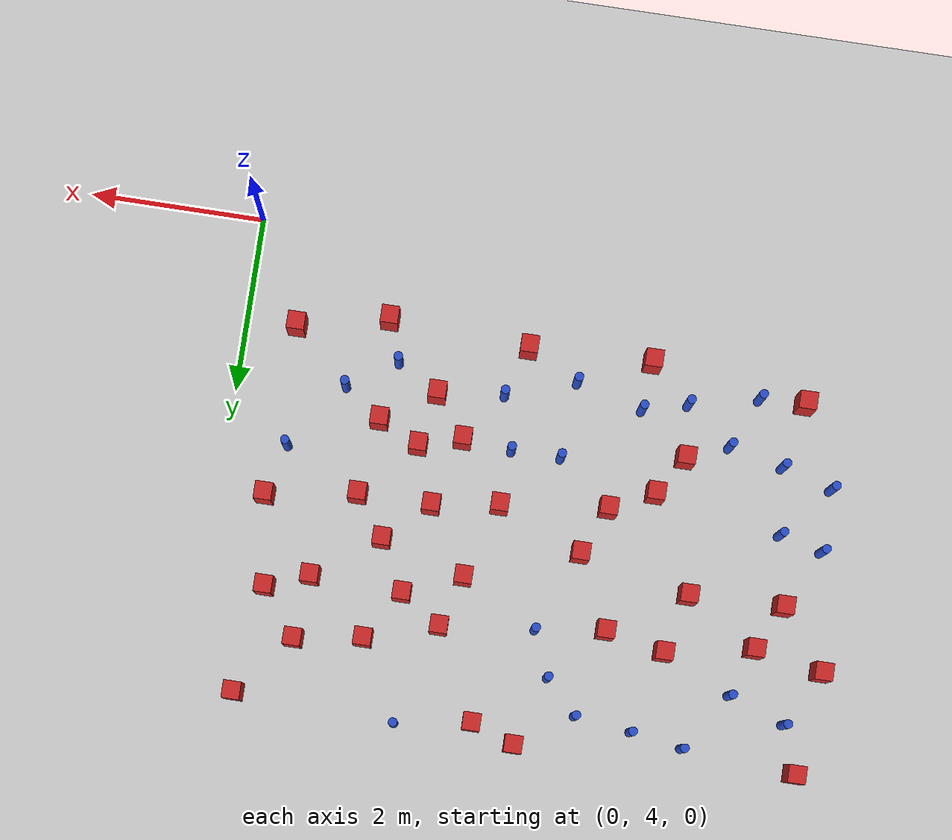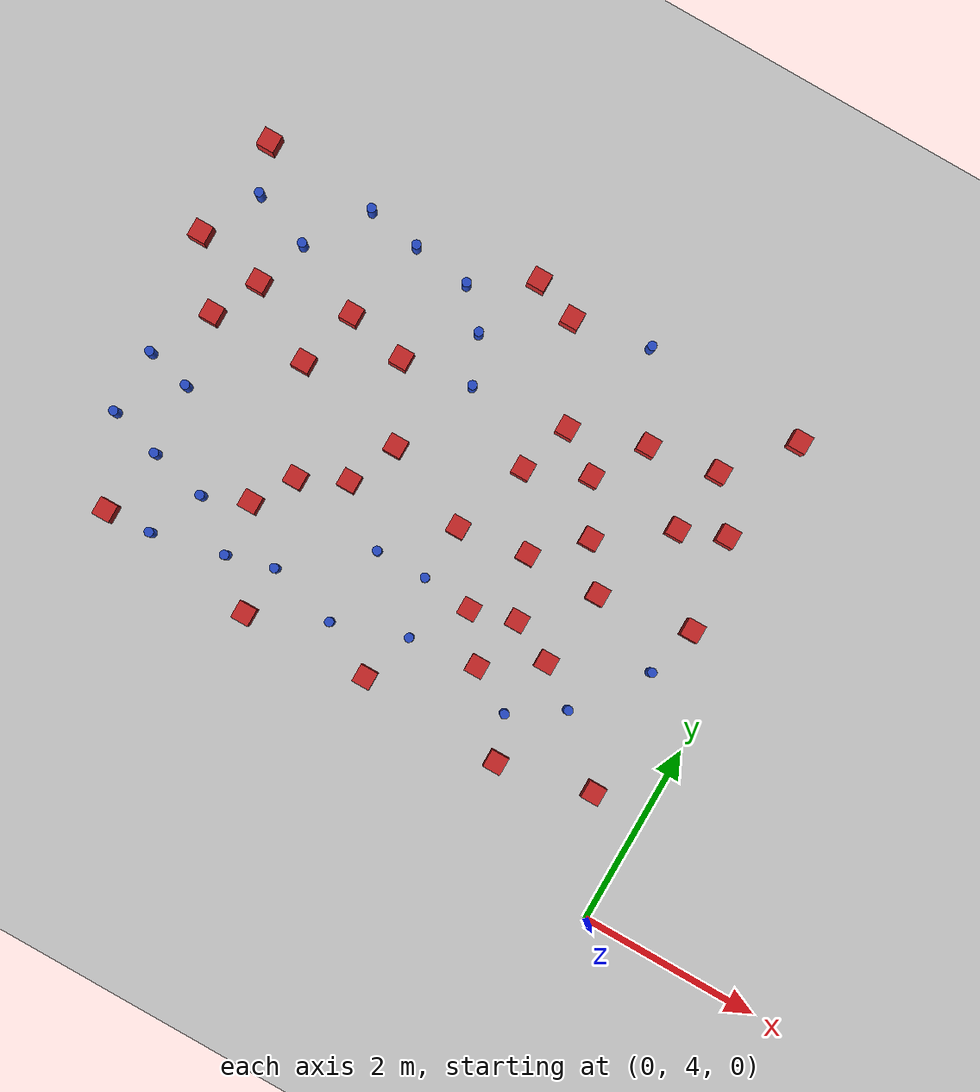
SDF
<sdf version="1.6">
 <world name="default">
  <model name="ground_plane">
   <static>1</static>
   <link name="link">
    <collision name="collision">
     <geometry><plane><normal>0 0 1</normal><size>100 100</size></plane></geometry>
     <surface><friction><ode><mu>100</mu><mu2>50</mu2></ode></friction></surface>
    </collision>
    <visual name="visual">
     <cast_shadows>0</cast_shadows>
     <geometry><plane><normal>0 0 1</normal><size>100 100</size></plane></geometry>
     <material>
      <ambient>1.0 1.0 1.0 1.0</ambient>
      <diffuse>0.8 0.8 0.8 1.0</diffuse>
      <specular>0.01 0.01 0.01 1.000000</specular>
     </material>
    </visual>
   </link>
  </model>
  <model name="square_post_obstacle2">
   <static>true</static>
   <pose>-6.45599153415 7.52745173422 1.91545236811e-07 -7.35059704564e-06 1.12565212e-07 2.39332434364e-05</pose>
   <link name="link">
    <pose>0 0 0.25 0 -0 0</pose>
    <inertial>
     <mass>100</mass>
     <inertia>
      <ixx>0.166667</ixx>
      <ixy>0</ixy>
      <ixz>0</ixz>
      <iyy>0.166667</iyy>
      <iyz>0</iyz>
      <izz>0.166667</izz>
     </inertia>
    </inertial>
    <collision name="collision"><geometry><box><size>.2 .2 .5</size></box></geometry></collision>
    <visual name="visual">
     <geometry><box><size>.2 .2 .5</size></box></geometry>
     <material>
      <script><name>Gazebo/Red</name><uri>file://media/materials/scripts/gazebo.material</uri></script>
     </material>
    </visual>
   </link>
  </model>
  <model name="square_post_obstacle9">
   <static>true</static>
   <pose>-4.86696928809 6.47936747951 1.91545236811e-07 -7.35059704564e-06 1.12565212e-07 2.39332434364e-05</pose>
   <link name="link">
    <pose>0 0 0.25 0 -0 0</pose>
    <inertial>
     <mass>100</mass>
     <inertia>
      <ixx>0.166667</ixx>
      <ixy>0</ixy>
      <ixz>0</ixz>
      <iyy>0.166667</iyy>
      <iyz>0</iyz>
      <izz>0.166667</izz>
     </inertia>
    </inertial>
    <collision name="collision"><geometry><box><size>.2 .2 .5</size></box></geometry></collision>
    <visual name="visual">
     <geometry><box><size>.2 .2 .5</size></box></geometry>
     <material>
      <script><name>Gazebo/Red</name><uri>file://media/materials/scripts/gazebo.material</uri></script>
     </material>
    </visual>
   </link>
  </model>
  <model name="square_post_obstacle11">
   <static>true</static>
   <pose>-0.696263297723 8.16231639691 1.91545236811e-07 -7.35059704564e-06 1.12565212e-07 2.39332434364e-05</pose>
   <link name="link">
    <pose>0 0 0.25 0 -0 0</pose>
    <inertial>
     <mass>100</mass>
     <inertia>
      <ixx>0.166667</ixx>
      <ixy>0</ixy>
      <ixz>0</ixz>
      <iyy>0.166667</iyy>
      <iyz>0</iyz>
      <izz>0.166667</izz>
     </inertia>
    </inertial>
    <collision name="collision"><geometry><box><size>.2 .2 .5</size></box></geometry></collision>
    <visual name="visual">
     <geometry><box><size>.2 .2 .5</size></box></geometry>
     <material>
      <script><name>Gazebo/Red</name><uri>file://media/materials/scripts/gazebo.material</uri></script>
     </material>
    </visual>
   </link>
  </model>
  <model name="square_post_obstacle16">
   <static>true</static>
   <pose>-0.590210509465 5.18321853976 1.91545236811e-07 -7.35059704564e-06 1.12565212e-07 2.39332434364e-05</pose>
   <link name="link">
    <pose>0 0 0.25 0 -0 0</pose>
    <inertial>
     <mass>100</mass>
     <inertia>
      <ixx>0.166667</ixx>
      <ixy>0</ixy>
      <ixz>0</ixz>
      <iyy>0.166667</iyy>
      <iyz>0</iyz>
      <izz>0.166667</izz>
     </inertia>
    </inertial>
    <collision name="collision"><geometry><box><size>.2 .2 .5</size></box></geometry></collision>
    <visual name="visual">
     <geometry><box><size>.2 .2 .5</size></box></geometry>
     <material>
      <script><name>Gazebo/Red</name><uri>file://media/materials/scripts/gazebo.material</uri></script>
     </material>
    </visual>
   </link>
  </model>
  <model name="pole_obstacle10">
   <static>true</static>
   <pose>-3.96756192233 8.70898957246 7.38925637345e-09 -8.47170692798e-08 1.24976764891e-08 -1.74513093027e-07</pose>
   <link name="link">
    <pose>0 0 0.3 0 -0 0</pose>
    <inertial>
     <mass>1</mass>
     <inertia><ixx>0.145833</ixx><ixy>0</ixy><ixz>0</ixz><iyy>0.145833</iyy><iyz>0</iyz><izz>0.125</izz></inertia>
    </inertial>
    <collision name="collision">
     <geometry><cylinder><radius>0.05</radius><length>.6</length></cylinder></geometry>
    </collision>
    <visual name="visual">
     <geometry><cylinder><radius>0.05</radius><length>.6</length></cylinder></geometry>
     <material>
      <script><name>Gazebo/Blue</name><uri>file://media/materials/scripts/gazebo.material</uri></script>
     </material>
    </visual>
   </link>
  </model>
  <model name="square_post_obstacle20">
   <static>true</static>
   <pose>-2.27867718137 5.71834548236 1.91545236811e-07 -7.35059704564e-06 1.12565212e-07 2.39332434364e-05</pose>
   <link name="link">
    <pose>0 0 0.25 0 -0 0</pose>
    <inertial>
     <mass>100</mass>
     <inertia>
      <ixx>0.166667</ixx>
      <ixy>0</ixy>
      <ixz>0</ixz>
      <iyy>0.166667</iyy>
      <iyz>0</iyz>
      <izz>0.166667</izz>
     </inertia>
    </inertial>
    <collision name="collision"><geometry><box><size>.2 .2 .5</size></box></geometry></collision>
    <visual name="visual">
     <geometry><box><size>.2 .2 .5</size></box></geometry>
     <material>
      <script><name>Gazebo/Red</name><uri>file://media/materials/scripts/gazebo.material</uri></script>
     </material>
    </visual>
   </link>
  </model>
  <model name="pole_obstacle12">
   <static>true</static>
   <pose>-6.31485896257 6.74035009021 7.38925637345e-09 -8.47170692796e-08 1.24976764786e-08 -1.74513093032e-07</pose>
   <link name="link">
    <pose>0 0 0.3 0 -0 0</pose>
    <inertial>
     <mass>1</mass>
     <inertia><ixx>0.145833</ixx><ixy>0</ixy><ixz>0</ixz><iyy>0.145833</iyy><iyz>0</iyz><izz>0.125</izz></inertia>
    </inertial>
    <collision name="collision">
     <geometry><cylinder><radius>0.05</radius><length>.6</length></cylinder></geometry>
    </collision>
    <visual name="visual">
     <geometry><cylinder><radius>0.05</radius><length>.6</length></cylinder></geometry>
     <material>
      <script><name>Gazebo/Blue</name><uri>file://media/materials/scripts/gazebo.material</uri></script>
     </material>
    </visual>
   </link>
  </model>
  <model name="pole_obstacle16">
   <static>true</static>
   <pose>-6.63617168185 8.83300791756 7.38925637345e-09 -8.471706928e-08 1.24976765081e-08 -1.74513093015e-07</pose>
   <link name="link">
    <pose>0 0 0.3 0 -0 0</pose>
    <inertial>
     <mass>1</mass>
     <inertia><ixx>0.145833</ixx><ixy>0</ixy><ixz>0</ixz><iyy>0.145833</iyy><iyz>0</iyz><izz>0.125</izz></inertia>
    </inertial>
    <collision name="collision">
     <geometry><cylinder><radius>0.05</radius><length>.6</length></cylinder></geometry>
    </collision>
    <visual name="visual">
     <geometry><cylinder><radius>0.05</radius><length>.6</length></cylinder></geometry>
     <material>
      <script><name>Gazebo/Blue</name><uri>file://media/materials/scripts/gazebo.material</uri></script>
     </material>
    </visual>
   </link>
  </model>
  <model name="square_post_obstacle25">
   <static>true</static>
   <pose>-5.20353006577 8.23097745979 1.91545236811e-07 -7.35059704564e-06 1.12565212e-07 2.39332434364e-05</pose>
   <link name="link">
    <pose>0 0 0.25 0 -0 0</pose>
    <inertial>
     <mass>100</mass>
     <inertia>
      <ixx>0.166667</ixx>
      <ixy>0</ixy>
      <ixz>0</ixz>
      <iyy>0.166667</iyy>
      <iyz>0</iyz>
      <izz>0.166667</izz>
     </inertia>
    </inertial>
    <collision name="collision"><geometry><box><size>.2 .2 .5</size></box></geometry></collision>
    <visual name="visual">
     <geometry><box><size>.2 .2 .5</size></box></geometry>
     <material>
      <script><name>Gazebo/Red</name><uri>file://media/materials/scripts/gazebo.material</uri></script>
     </material>
    </visual>
   </link>
  </model>
  <model name="pole_obstacle20">
   <static>true</static>
   <pose>-3.19735239825 6.24454835547 7.38925637345e-09 -8.47170692798e-08 1.24976765033e-08 -1.74513093019e-07</pose>
   <link name="link">
    <pose>0 0 0.3 0 -0 0</pose>
    <inertial>
     <mass>1</mass>
     <inertia><ixx>0.145833</ixx><ixy>0</ixy><ixz>0</ixz><iyy>0.145833</iyy><iyz>0</iyz><izz>0.125</izz></inertia>
    </inertial>
    <collision name="collision">
     <geometry><cylinder><radius>0.05</radius><length>.6</length></cylinder></geometry>
    </collision>
    <visual name="visual">
     <geometry><cylinder><radius>0.05</radius><length>.6</length></cylinder></geometry>
     <material>
      <script><name>Gazebo/Blue</name><uri>file://media/materials/scripts/gazebo.material</uri></script>
     </material>
    </visual>
   </link>
  </model>
  <model name="pole_obstacle40">
   <static>true</static>
   <pose>-6.24419178976 5.97665697127 7.38925637345e-09 -8.47170692796e-08 1.24976764786e-08 -1.74513093032e-07</pose>
   <link name="link">
    <pose>0 0 0.3 0 -0 0</pose>
    <inertial>
     <mass>1</mass>
     <inertia><ixx>0.145833</ixx><ixy>0</ixy><ixz>0</ixz><iyy>0.145833</iyy><iyz>0</iyz><izz>0.125</izz></inertia>
    </inertial>
    <collision name="collision">
     <geometry><cylinder><radius>0.05</radius><length>.6</length></cylinder></geometry>
    </collision>
    <visual name="visual">
     <geometry><cylinder><radius>0.05</radius><length>.6</length></cylinder></geometry>
     <material>
      <script><name>Gazebo/Blue</name><uri>file://media/materials/scripts/gazebo.material</uri></script>
     </material>
    </visual>
   </link>
  </model>
  <model name="square_post_obstacle45">
   <static>true</static>
   <pose>-3.15835755811 6.8684822048 1.91545236811e-07 -7.35059704564e-06 1.12565212e-07 2.39332434364e-05</pose>
   <link name="link">
    <pose>0 0 0.25 0 -0 0</pose>
    <inertial>
     <mass>100</mass>
     <inertia>
      <ixx>0.166667</ixx>
      <ixy>0</ixy>
      <ixz>0</ixz>
      <iyy>0.166667</iyy>
      <iyz>0</iyz>
      <izz>0.166667</izz>
     </inertia>
    </inertial>
    <collision name="collision"><geometry><box><size>.2 .2 .5</size></box></geometry></collision>
    <visual name="visual">
     <geometry><box><size>.2 .2 .5</size></box></geometry>
     <material>
      <script><name>Gazebo/Red</name><uri>file://media/materials/scripts/gazebo.material</uri></script>
     </material>
    </visual>
   </link>
  </model>
  <model name="square_post_obstacle48">
   <static>true</static>
   <pose>-4.13218952688 7.2731361307 1.91545236811e-07 -7.35059704564e-06 1.12565212e-07 2.39332434364e-05</pose>
   <link name="link">
    <pose>0 0 0.25 0 -0 0</pose>
    <inertial>
     <mass>100</mass>
     <inertia>
      <ixx>0.166667</ixx>
      <ixy>0</ixy>
      <ixz>0</ixz>
      <iyy>0.166667</iyy>
      <iyz>0</iyz>
      <izz>0.166667</izz>
     </inertia>
    </inertial>
    <collision name="collision"><geometry><box><size>.2 .2 .5</size></box></geometry></collision>
    <visual name="visual">
     <geometry><box><size>.2 .2 .5</size></box></geometry>
     <material>
      <script><name>Gazebo/Red</name><uri>file://media/materials/scripts/gazebo.material</uri></script>
     </material>
    </visual>
   </link>
  </model>
  <model name="square_post_obstacle51">
   <static>true</static>
   <pose>-2.68773001322 8.3141448622 1.91545236811e-07 -7.35059704564e-06 1.12565212e-07 2.39332434364e-05</pose>
   <link name="link">
    <pose>0 0 0.25 0 -0 0</pose>
    <inertial>
     <mass>100</mass>
     <inertia>
      <ixx>0.166667</ixx>
      <ixy>0</ixy>
      <ixz>0</ixz>
      <iyy>0.166667</iyy>
      <iyz>0</iyz>
      <izz>0.166667</izz>
     </inertia>
    </inertial>
    <collision name="collision"><geometry><box><size>.2 .2 .5</size></box></geometry></collision>
    <visual name="visual">
     <geometry><box><size>.2 .2 .5</size></box></geometry>
     <material>
      <script><name>Gazebo/Red</name><uri>file://media/materials/scripts/gazebo.material</uri></script>
     </material>
    </visual>
   </link>
  </model>
  <model name="square_post_obstacle69">
   <static>true</static>
   <pose>-1.56605909293 6.97973641739 1.91545236811e-07 -7.35059704564e-06 1.12565212e-07 2.39332434364e-05</pose>
   <link name="link">
    <pose>0 0 0.25 0 -0 0</pose>
    <inertial>
     <mass>100</mass>
     <inertia>
      <ixx>0.166667</ixx>
      <ixy>0</ixy>
      <ixz>0</ixz>
      <iyy>0.166667</iyy>
      <iyz>0</iyz>
      <izz>0.166667</izz>
     </inertia>
    </inertial>
    <collision name="collision"><geometry><box><size>.2 .2 .5</size></box></geometry></collision>
    <visual name="visual">
     <geometry><box><size>.2 .2 .5</size></box></geometry>
     <material>
      <script><name>Gazebo/Red</name><uri>file://media/materials/scripts/gazebo.material</uri></script>
     </material>
    </visual>
   </link>
  </model>
  <model name="pole_obstacle72">
   <static>true</static>
   <pose>-5.99629139339 8.60151105929 7.38925637345e-09 -8.471706928e-08 1.24976765081e-08 -1.74513093015e-07</pose>
   <link name="link">
    <pose>0 0 0.3 0 -0 0</pose>
    <inertial>
     <mass>1</mass>
     <inertia><ixx>0.145833</ixx><ixy>0</ixy><ixz>0</ixz><iyy>0.145833</iyy><iyz>0</iyz><izz>0.125</izz></inertia>
    </inertial>
    <collision name="collision">
     <geometry><cylinder><radius>0.05</radius><length>.6</length></cylinder></geometry>
    </collision>
    <visual name="visual">
     <geometry><cylinder><radius>0.05</radius><length>.6</length></cylinder></geometry>
     <material>
      <script><name>Gazebo/Blue</name><uri>file://media/materials/scripts/gazebo.material</uri></script>
     </material>
    </visual>
   </link>
  </model>
  <model name="pole_obstacle75">
   <static>true</static>
   <pose>-0.689479260919 6.55343063279 7.38925637345e-09 -8.471706928e-08 1.24976765086e-08 -1.74513093015e-07</pose>
   <link name="link">
    <pose>0 0 0.3 0 -0 0</pose>
    <inertial>
     <mass>1</mass>
     <inertia><ixx>0.145833</ixx><ixy>0</ixy><ixz>0</ixz><iyy>0.145833</iyy><iyz>0</iyz><izz>0.125</izz></inertia>
    </inertial>
    <collision name="collision">
     <geometry><cylinder><radius>0.05</radius><length>.6</length></cylinder></geometry>
    </collision>
    <visual name="visual">
     <geometry><cylinder><radius>0.05</radius><length>.6</length></cylinder></geometry>
     <material>
      <script><name>Gazebo/Blue</name><uri>file://media/materials/scripts/gazebo.material</uri></script>
     </material>
    </visual>
   </link>
  </model>
  <model name="square_post_obstacle88">
   <static>true</static>
   <pose>-6.39963282085 5.21956130517 1.91545236811e-07 -7.35059704564e-06 1.12565212e-07 2.39332434364e-05</pose>
   <link name="link">
    <pose>0 0 0.25 0 -0 0</pose>
    <inertial>
     <mass>100</mass>
     <inertia>
      <ixx>0.166667</ixx>
      <ixy>0</ixy>
      <ixz>0</ixz>
      <iyy>0.166667</iyy>
      <iyz>0</iyz>
      <izz>0.166667</izz>
     </inertia>
    </inertial>
    <collision name="collision"><geometry><box><size>.2 .2 .5</size></box></geometry></collision>
    <visual name="visual">
     <geometry><box><size>.2 .2 .5</size></box></geometry>
     <material>
      <script><name>Gazebo/Red</name><uri>file://media/materials/scripts/gazebo.material</uri></script>
     </material>
    </visual>
   </link>
  </model>
  <model name="square_post_obstacle93">
   <static>true</static>
   <pose>-1.87288961324 8.57251450993 1.91545236811e-07 -7.35059704564e-06 1.12565212e-07 2.39332434364e-05</pose>
   <link name="link">
    <pose>0 0 0.25 0 -0 0</pose>
    <inertial>
     <mass>100</mass>
     <inertia>
      <ixx>0.166667</ixx>
      <ixy>0</ixy>
      <ixz>0</ixz>
      <iyy>0.166667</iyy>
      <iyz>0</iyz>
      <izz>0.166667</izz>
     </inertia>
    </inertial>
    <collision name="collision"><geometry><box><size>.2 .2 .5</size></box></geometry></collision>
    <visual name="visual">
     <geometry><box><size>.2 .2 .5</size></box></geometry>
     <material>
      <script><name>Gazebo/Red</name><uri>file://media/materials/scripts/gazebo.material</uri></script>
     </material>
    </visual>
   </link>
  </model>
  <model name="square_post_obstacle99">
   <static>true</static>
   <pose>-2.15243715775 6.33281456013 1.91545236811e-07 -7.35059704564e-06 1.12565212e-07 2.39332434364e-05</pose>
   <link name="link">
    <pose>0 0 0.25 0 -0 0</pose>
    <inertial>
     <mass>100</mass>
     <inertia>
      <ixx>0.166667</ixx>
      <ixy>0</ixy>
      <ixz>0</ixz>
      <iyy>0.166667</iyy>
      <iyz>0</iyz>
      <izz>0.166667</izz>
     </inertia>
    </inertial>
    <collision name="collision"><geometry><box><size>.2 .2 .5</size></box></geometry></collision>
    <visual name="visual">
     <geometry><box><size>.2 .2 .5</size></box></geometry>
     <material>
      <script><name>Gazebo/Red</name><uri>file://media/materials/scripts/gazebo.material</uri></script>
     </material>
    </visual>
   </link>
  </model>
  <model name="square_post_obstacle108">
   <static>true</static>
   <pose>-1.6796935786 6.11049720533 1.91545236811e-07 -7.35059704564e-06 1.12565212e-07 2.39332434364e-05</pose>
   <link name="link">
    <pose>0 0 0.25 0 -0 0</pose>
    <inertial>
     <mass>100</mass>
     <inertia>
      <ixx>0.166667</ixx>
      <ixy>0</ixy>
      <ixz>0</ixz>
      <iyy>0.166667</iyy>
      <iyz>0</iyz>
      <izz>0.166667</izz>
     </inertia>
    </inertial>
    <collision name="collision"><geometry><box><size>.2 .2 .5</size></box></geometry></collision>
    <visual name="visual">
     <geometry><box><size>.2 .2 .5</size></box></geometry>
     <material>
      <script><name>Gazebo/Red</name><uri>file://media/materials/scripts/gazebo.material</uri></script>
     </material>
    </visual>
   </link>
  </model>
  <model name="square_post_obstacle111">
   <static>true</static>
   <pose>-6.82109839776 9.35708388493 1.91545236811e-07 -7.35059704564e-06 1.12565212e-07 2.39332434364e-05</pose>
   <link name="link">
    <pose>0 0 0.25 0 -0 0</pose>
    <inertial>
     <mass>100</mass>
     <inertia>
      <ixx>0.166667</ixx>
      <ixy>0</ixy>
      <ixz>0</ixz>
      <iyy>0.166667</iyy>
      <iyz>0</iyz>
      <izz>0.166667</izz>
     </inertia>
    </inertial>
    <collision name="collision"><geometry><box><size>.2 .2 .5</size></box></geometry></collision>
    <visual name="visual">
     <geometry><box><size>.2 .2 .5</size></box></geometry>
     <material>
      <script><name>Gazebo/Red</name><uri>file://media/materials/scripts/gazebo.material</uri></script>
     </material>
    </visual>
   </link>
  </model>
  <model name="pole_obstacle128">
   <static>true</static>
   <pose>-3.03138765353 5.62912651391 7.38925637345e-09 -8.47170692794e-08 1.24976764468e-08 -1.7451309304e-07</pose>
   <link name="link">
    <pose>0 0 0.3 0 -0 0</pose>
    <inertial>
     <mass>1</mass>
     <inertia><ixx>0.145833</ixx><ixy>0</ixy><ixz>0</ixz><iyy>0.145833</iyy><iyz>0</iyz><izz>0.125</izz></inertia>
    </inertial>
    <collision name="collision">
     <geometry><cylinder><radius>0.05</radius><length>.6</length></cylinder></geometry>
    </collision>
    <visual name="visual">
     <geometry><cylinder><radius>0.05</radius><length>.6</length></cylinder></geometry>
     <material>
      <script><name>Gazebo/Blue</name><uri>file://media/materials/scripts/gazebo.material</uri></script>
     </material>
    </visual>
   </link>
  </model>
  <model name="pole_obstacle131">
   <static>true</static>
   <pose>-4.32857674774 9.08568801929 7.38925637345e-09 -8.471706928e-08 1.24976765081e-08 -1.74513093015e-07</pose>
   <link name="link">
    <pose>0 0 0.3 0 -0 0</pose>
    <inertial>
     <mass>1</mass>
     <inertia><ixx>0.145833</ixx><ixy>0</ixy><ixz>0</ixz><iyy>0.145833</iyy><iyz>0</iyz><izz>0.125</izz></inertia>
    </inertial>
    <collision name="collision">
     <geometry><cylinder><radius>0.05</radius><length>.6</length></cylinder></geometry>
    </collision>
    <visual name="visual">
     <geometry><cylinder><radius>0.05</radius><length>.6</length></cylinder></geometry>
     <material>
      <script><name>Gazebo/Blue</name><uri>file://media/materials/scripts/gazebo.material</uri></script>
     </material>
    </visual>
   </link>
  </model>
  <model name="square_post_obstacle121">
   <static>true</static>
   <pose>-3.22545022058 5.050945838 1.91545236811e-07 -7.35059704564e-06 1.12565212e-07 2.39332434364e-05</pose>
   <link name="link">
    <pose>0 0 0.25 0 -0 0</pose>
    <inertial>
     <mass>100</mass>
     <inertia>
      <ixx>0.166667</ixx>
      <ixy>0</ixy>
      <ixz>0</ixz>
      <iyy>0.166667</iyy>
      <iyz>0</iyz>
      <izz>0.166667</izz>
     </inertia>
    </inertial>
    <collision name="collision"><geometry><box><size>.2 .2 .5</size></box></geometry></collision>
    <visual name="visual">
     <geometry><box><size>.2 .2 .5</size></box></geometry>
     <material>
      <script><name>Gazebo/Red</name><uri>file://media/materials/scripts/gazebo.material</uri></script>
     </material>
    </visual>
   </link>
  </model>
  <model name="pole_obstacle140">
   <static>true</static>
   <pose>-4.58694406875 5.56271628025 7.38925637345e-09 -8.47170692796e-08 1.24976764786e-08 -1.74513093032e-07</pose>
   <link name="link">
    <pose>0 0 0.3 0 -0 0</pose>
    <inertial>
     <mass>1</mass>
     <inertia><ixx>0.145833</ixx><ixy>0</ixy><ixz>0</ixz><iyy>0.145833</iyy><iyz>0</iyz><izz>0.125</izz></inertia>
    </inertial>
    <collision name="collision">
     <geometry><cylinder><radius>0.05</radius><length>.6</length></cylinder></geometry>
    </collision>
    <visual name="visual">
     <geometry><cylinder><radius>0.05</radius><length>.6</length></cylinder></geometry>
     <material>
      <script><name>Gazebo/Blue</name><uri>file://media/materials/scripts/gazebo.material</uri></script>
     </material>
    </visual>
   </link>
  </model>
  <model name="pole_obstacle143">
   <static>true</static>
   <pose>-5.0983249785 5.42668405233 7.38925637345e-09 -8.47170692796e-08 1.24976764786e-08 -1.74513093032e-07</pose>
   <link name="link">
    <pose>0 0 0.3 0 -0 0</pose>
    <inertial>
     <mass>1</mass>
     <inertia><ixx>0.145833</ixx><ixy>0</ixy><ixz>0</ixz><iyy>0.145833</iyy><iyz>0</iyz><izz>0.125</izz></inertia>
    </inertial>
    <collision name="collision">
     <geometry><cylinder><radius>0.05</radius><length>.6</length></cylinder></geometry>
    </collision>
    <visual name="visual">
     <geometry><cylinder><radius>0.05</radius><length>.6</length></cylinder></geometry>
     <material>
      <script><name>Gazebo/Blue</name><uri>file://media/materials/scripts/gazebo.material</uri></script>
     </material>
    </visual>
   </link>
  </model>
  <model name="square_post_obstacle135">
   <static>true</static>
   <pose>-1.62126257231 4.95808216558 1.91545236811e-07 -7.35059704564e-06 1.12565212e-07 2.39332434364e-05</pose>
   <link name="link">
    <pose>0 0 0.25 0 -0 0</pose>
    <inertial>
     <mass>100</mass>
     <inertia>
      <ixx>0.166667</ixx>
      <ixy>0</ixy>
      <ixz>0</ixz>
      <iyy>0.166667</iyy>
      <iyz>0</iyz>
      <izz>0.166667</izz>
     </inertia>
    </inertial>
    <collision name="collision"><geometry><box><size>.2 .2 .5</size></box></geometry></collision>
    <visual name="visual">
     <geometry><box><size>.2 .2 .5</size></box></geometry>
     <material>
      <script><name>Gazebo/Red</name><uri>file://media/materials/scripts/gazebo.material</uri></script>
     </material>
    </visual>
   </link>
  </model>
  <model name="square_post_obstacle137">
   <static>true</static>
   <pose>-6.96995239473 8.19237965308 1.91545236811e-07 -7.35059704564e-06 1.12565212e-07 2.39332434364e-05</pose>
   <link name="link">
    <pose>0 0 0.25 0 -0 0</pose>
    <inertial>
     <mass>100</mass>
     <inertia>
      <ixx>0.166667</ixx>
      <ixy>0</ixy>
      <ixz>0</ixz>
      <iyy>0.166667</iyy>
      <iyz>0</iyz>
      <izz>0.166667</izz>
     </inertia>
    </inertial>
    <collision name="collision"><geometry><box><size>.2 .2 .5</size></box></geometry></collision>
    <visual name="visual">
     <geometry><box><size>.2 .2 .5</size></box></geometry>
     <material>
      <script><name>Gazebo/Red</name><uri>file://media/materials/scripts/gazebo.material</uri></script>
     </material>
    </visual>
   </link>
  </model>
  <model name="pole_obstacle152">
   <static>true</static>
   <pose>-3.82312888846 5.36163308904 7.38925637345e-09 -8.47170692798e-08 1.24976765033e-08 -1.74513093019e-07</pose>
   <link name="link">
    <pose>0 0 0.3 0 -0 0</pose>
    <inertial>
     <mass>1</mass>
     <inertia><ixx>0.145833</ixx><ixy>0</ixy><ixz>0</ixz><iyy>0.145833</iyy><iyz>0</iyz><izz>0.125</izz></inertia>
    </inertial>
    <collision name="collision">
     <geometry><cylinder><radius>0.05</radius><length>.6</length></cylinder></geometry>
    </collision>
    <visual name="visual">
     <geometry><cylinder><radius>0.05</radius><length>.6</length></cylinder></geometry>
     <material>
      <script><name>Gazebo/Blue</name><uri>file://media/materials/scripts/gazebo.material</uri></script>
     </material>
    </visual>
   </link>
  </model>
  <model name="square_post_obstacle144">
   <static>true</static>
   <pose>-3.20491309855 9.32104005088 1.91545236811e-07 -7.35059704564e-06 1.12565212e-07 2.39332434364e-05</pose>
   <link name="link">
    <pose>0 0 0.25 0 -0 0</pose>
    <inertial>
     <mass>100</mass>
     <inertia>
      <ixx>0.166667</ixx>
      <ixy>0</ixy>
      <ixz>0</ixz>
      <iyy>0.166667</iyy>
      <iyz>0</iyz>
      <izz>0.166667</izz>
     </inertia>
    </inertial>
    <collision name="collision"><geometry><box><size>.2 .2 .5</size></box></geometry></collision>
    <visual name="visual">
     <geometry><box><size>.2 .2 .5</size></box></geometry>
     <material>
      <script><name>Gazebo/Red</name><uri>file://media/materials/scripts/gazebo.material</uri></script>
     </material>
    </visual>
   </link>
  </model>
  <model name="square_post_obstacle146">
   <static>true</static>
   <pose>-2.2242662157 8.00839482308 1.91545236811e-07 -7.35059704564e-06 1.12565212e-07 2.39332434364e-05</pose>
   <link name="link">
    <pose>0 0 0.25 0 -0 0</pose>
    <inertial>
     <mass>100</mass>
     <inertia>
      <ixx>0.166667</ixx>
      <ixy>0</ixy>
      <ixz>0</ixz>
      <iyy>0.166667</iyy>
      <iyz>0</iyz>
      <izz>0.166667</izz>
     </inertia>
    </inertial>
    <collision name="collision"><geometry><box><size>.2 .2 .5</size></box></geometry></collision>
    <visual name="visual">
     <geometry><box><size>.2 .2 .5</size></box></geometry>
     <material>
      <script><name>Gazebo/Red</name><uri>file://media/materials/scripts/gazebo.material</uri></script>
     </material>
    </visual>
   </link>
  </model>
  <model name="square_post_obstacle149">
   <static>true</static>
   <pose>-2.87582371764 7.72617935888 1.91545236811e-07 -7.35059704564e-06 1.12565212e-07 2.39332434364e-05</pose>
   <link name="link">
    <pose>0 0 0.25 0 -0 0</pose>
    <inertial>
     <mass>100</mass>
     <inertia>
      <ixx>0.166667</ixx>
      <ixy>0</ixy>
      <ixz>0</ixz>
      <iyy>0.166667</iyy>
      <iyz>0</iyz>
      <izz>0.166667</izz>
     </inertia>
    </inertial>
    <collision name="collision"><geometry><box><size>.2 .2 .5</size></box></geometry></collision>
    <visual name="visual">
     <geometry><box><size>.2 .2 .5</size></box></geometry>
     <material>
      <script><name>Gazebo/Red</name><uri>file://media/materials/scripts/gazebo.material</uri></script>
     </material>
    </visual>
   </link>
  </model>
  <model name="square_post_obstacle155">
   <static>true</static>
   <pose>-5.38697140499 7.55924840517 1.91545236811e-07 -7.35059704564e-06 1.12565212e-07 2.39332434364e-05</pose>
   <link name="link">
    <pose>0 0 0.25 0 -0 0</pose>
    <inertial>
     <mass>100</mass>
     <inertia>
      <ixx>0.166667</ixx>
      <ixy>0</ixy>
      <ixz>0</ixz>
      <iyy>0.166667</iyy>
      <iyz>0</iyz>
      <izz>0.166667</izz>
     </inertia>
    </inertial>
    <collision name="collision"><geometry><box><size>.2 .2 .5</size></box></geometry></collision>
    <visual name="visual">
     <geometry><box><size>.2 .2 .5</size></box></geometry>
     <material>
      <script><name>Gazebo/Red</name><uri>file://media/materials/scripts/gazebo.material</uri></script>
     </material>
    </visual>
   </link>
  </model>
  <model name="square_post_obstacle157">
   <static>true</static>
   <pose>-1.10477149948 8.69174245344 1.91545236811e-07 -7.35059704564e-06 1.12565212e-07 2.39332434364e-05</pose>
   <link name="link">
    <pose>0 0 0.25 0 -0 0</pose>
    <inertial>
     <mass>100</mass>
     <inertia>
      <ixx>0.166667</ixx>
      <ixy>0</ixy>
      <ixz>0</ixz>
      <iyy>0.166667</iyy>
      <iyz>0</iyz>
      <izz>0.166667</izz>
     </inertia>
    </inertial>
    <collision name="collision"><geometry><box><size>.2 .2 .5</size></box></geometry></collision>
    <visual name="visual">
     <geometry><box><size>.2 .2 .5</size></box></geometry>
     <material>
      <script><name>Gazebo/Red</name><uri>file://media/materials/scripts/gazebo.material</uri></script>
     </material>
    </visual>
   </link>
  </model>
  <model name="square_post_obstacle158">
   <static>true</static>
   <pose>-1.18316164624 7.97014537219 1.91545236811e-07 -7.35059704564e-06 1.12565212e-07 2.39332434364e-05</pose>
   <link name="link">
    <pose>0 0 0.25 0 -0 0</pose>
    <inertial>
     <mass>100</mass>
     <inertia>
      <ixx>0.166667</ixx>
      <ixy>0</ixy>
      <ixz>0</ixz>
      <iyy>0.166667</iyy>
      <iyz>0</iyz>
      <izz>0.166667</izz>
     </inertia>
    </inertial>
    <collision name="collision"><geometry><box><size>.2 .2 .5</size></box></geometry></collision>
    <visual name="visual">
     <geometry><box><size>.2 .2 .5</size></box></geometry>
     <material>
      <script><name>Gazebo/Red</name><uri>file://media/materials/scripts/gazebo.material</uri></script>
     </material>
    </visual>
   </link>
  </model>
  <model name="pole_obstacle171">
   <static>true</static>
   <pose>-5.55325630951 9.26374845623 7.38925637345e-09 -8.471706928e-08 1.24976765081e-08 -1.74513093015e-07</pose>
   <link name="link">
    <pose>0 0 0.3 0 -0 0</pose>
    <inertial>
     <mass>1</mass>
     <inertia><ixx>0.145833</ixx><ixy>0</ixy><ixz>0</ixz><iyy>0.145833</iyy><iyz>0</iyz><izz>0.125</izz></inertia>
    </inertial>
    <collision name="collision">
     <geometry><cylinder><radius>0.05</radius><length>.6</length></cylinder></geometry>
    </collision>
    <visual name="visual">
     <geometry><cylinder><radius>0.05</radius><length>.6</length></cylinder></geometry>
     <material>
      <script><name>Gazebo/Blue</name><uri>file://media/materials/scripts/gazebo.material</uri></script>
     </material>
    </visual>
   </link>
  </model>
  <model name="pole_obstacle174">
   <static>true</static>
   <pose>-2.35159418776 9.4630411382 7.38925637345e-09 -8.47170692793e-08 1.24976764408e-08 -1.74513093041e-07</pose>
   <link name="link">
    <pose>0 0 0.3 0 -0 0</pose>
    <inertial>
     <mass>1</mass>
     <inertia><ixx>0.145833</ixx><ixy>0</ixy><ixz>0</ixz><iyy>0.145833</iyy><iyz>0</iyz><izz>0.125</izz></inertia>
    </inertial>
    <collision name="collision">
     <geometry><cylinder><radius>0.05</radius><length>.6</length></cylinder></geometry>
    </collision>
    <visual name="visual">
     <geometry><cylinder><radius>0.05</radius><length>.6</length></cylinder></geometry>
     <material>
      <script><name>Gazebo/Blue</name><uri>file://media/materials/scripts/gazebo.material</uri></script>
     </material>
    </visual>
   </link>
  </model>
  <model name="square_post_obstacle164">
   <static>true</static>
   <pose>-3.69593761353 9.49507645334 1.91545236811e-07 -7.35059704564e-06 1.12565212e-07 2.39332434364e-05</pose>
   <link name="link">
    <pose>0 0 0.25 0 -0 0</pose>
    <inertial>
     <mass>100</mass>
     <inertia>
      <ixx>0.166667</ixx>
      <ixy>0</ixy>
      <ixz>0</ixz>
      <iyy>0.166667</iyy>
      <iyz>0</iyz>
      <izz>0.166667</izz>
     </inertia>
    </inertial>
    <collision name="collision"><geometry><box><size>.2 .2 .5</size></box></geometry></collision>
    <visual name="visual">
     <geometry><box><size>.2 .2 .5</size></box></geometry>
     <material>
      <script><name>Gazebo/Red</name><uri>file://media/materials/scripts/gazebo.material</uri></script>
     </material>
    </visual>
   </link>
  </model>
  <model name="pole_obstacle182">
   <static>true</static>
   <pose>-1.24264874456 5.79094489455 7.38925637345e-09 -8.47170692799e-08 1.24976765033e-08 -1.74513093018e-07</pose>
   <link name="link">
    <pose>0 0 0.3 0 -0 0</pose>
    <inertial>
     <mass>1</mass>
     <inertia><ixx>0.145833</ixx><ixy>0</ixy><ixz>0</ixz><iyy>0.145833</iyy><iyz>0</iyz><izz>0.125</izz></inertia>
    </inertial>
    <collision name="collision">
     <geometry><cylinder><radius>0.05</radius><length>.6</length></cylinder></geometry>
    </collision>
    <visual name="visual">
     <geometry><cylinder><radius>0.05</radius><length>.6</length></cylinder></geometry>
     <material>
      <script><name>Gazebo/Blue</name><uri>file://media/materials/scripts/gazebo.material</uri></script>
     </material>
    </visual>
   </link>
  </model>
  <model name="pole_obstacle183">
   <static>true</static>
   <pose>-6.81868855715 6.14525695046 7.38925637345e-09 -8.47170692796e-08 1.24976764786e-08 -1.74513093032e-07</pose>
   <link name="link">
    <pose>0 0 0.3 0 -0 0</pose>
    <inertial>
     <mass>1</mass>
     <inertia><ixx>0.145833</ixx><ixy>0</ixy><ixz>0</ixz><iyy>0.145833</iyy><iyz>0</iyz><izz>0.125</izz></inertia>
    </inertial>
    <collision name="collision">
     <geometry><cylinder><radius>0.05</radius><length>.6</length></cylinder></geometry>
    </collision>
    <visual name="visual">
     <geometry><cylinder><radius>0.05</radius><length>.6</length></cylinder></geometry>
     <material>
      <script><name>Gazebo/Blue</name><uri>file://media/materials/scripts/gazebo.material</uri></script>
     </material>
    </visual>
   </link>
  </model>
  <model name="square_post_obstacle172">
   <static>true</static>
   <pose>-4.53128629446 8.08840672128 1.91545236811e-07 -7.35059704564e-06 1.12565212e-07 2.39332434364e-05</pose>
   <link name="link">
    <pose>0 0 0.25 0 -0 0</pose>
    <inertial>
     <mass>100</mass>
     <inertia>
      <ixx>0.166667</ixx>
      <ixy>0</ixy>
      <ixz>0</ixz>
      <iyy>0.166667</iyy>
      <iyz>0</iyz>
      <izz>0.166667</izz>
     </inertia>
    </inertial>
    <collision name="collision"><geometry><box><size>.2 .2 .5</size></box></geometry></collision>
    <visual name="visual">
     <geometry><box><size>.2 .2 .5</size></box></geometry>
     <material>
      <script><name>Gazebo/Red</name><uri>file://media/materials/scripts/gazebo.material</uri></script>
     </material>
    </visual>
   </link>
  </model>
  <model name="square_post_obstacle176">
   <static>true</static>
   <pose>-0.532528265915 7.13998076939 1.91545236811e-07 -7.35059704564e-06 1.12565212e-07 2.39332434364e-05</pose>
   <link name="link">
    <pose>0 0 0.25 0 -0 0</pose>
    <inertial>
     <mass>100</mass>
     <inertia>
      <ixx>0.166667</ixx>
      <ixy>0</ixy>
      <ixz>0</ixz>
      <iyy>0.166667</iyy>
      <iyz>0</iyz>
      <izz>0.166667</izz>
     </inertia>
    </inertial>
    <collision name="collision"><geometry><box><size>.2 .2 .5</size></box></geometry></collision>
    <visual name="visual">
     <geometry><box><size>.2 .2 .5</size></box></geometry>
     <material>
      <script><name>Gazebo/Red</name><uri>file://media/materials/scripts/gazebo.material</uri></script>
     </material>
    </visual>
   </link>
  </model>
  <model name="square_post_obstacle189">
   <static>true</static>
   <pose>-5.14542000256 6.03277218657 1.91545236811e-07 -7.35059704564e-06 1.12565212e-07 2.39332434364e-05</pose>
   <link name="link">
    <pose>0 0 0.25 0 -0 0</pose>
    <inertial>
     <mass>100</mass>
     <inertia>
      <ixx>0.166667</ixx>
      <ixy>0</ixy>
      <ixz>0</ixz>
      <iyy>0.166667</iyy>
      <iyz>0</iyz>
      <izz>0.166667</izz>
     </inertia>
    </inertial>
    <collision name="collision"><geometry><box><size>.2 .2 .5</size></box></geometry></collision>
    <visual name="visual">
     <geometry><box><size>.2 .2 .5</size></box></geometry>
     <material>
      <script><name>Gazebo/Red</name><uri>file://media/materials/scripts/gazebo.material</uri></script>
     </material>
    </visual>
   </link>
  </model>
  <model name="square_post_obstacle193">
   <static>true</static>
   <pose>-1.91164506119 7.44148980027 1.91545236811e-07 -7.35059704564e-06 1.12565212e-07 2.39332434364e-05</pose>
   <link name="link">
    <pose>0 0 0.25 0 -0 0</pose>
    <inertial>
     <mass>100</mass>
     <inertia>
      <ixx>0.166667</ixx>
      <ixy>0</ixy>
      <ixz>0</ixz>
      <iyy>0.166667</iyy>
      <iyz>0</iyz>
      <izz>0.166667</izz>
     </inertia>
    </inertial>
    <collision name="collision"><geometry><box><size>.2 .2 .5</size></box></geometry></collision>
    <visual name="visual">
     <geometry><box><size>.2 .2 .5</size></box></geometry>
     <material>
      <script><name>Gazebo/Red</name><uri>file://media/materials/scripts/gazebo.material</uri></script>
     </material>
    </visual>
   </link>
  </model>
  <model name="square_post_obstacle197">
   <static>true</static>
   <pose>-2.63885952319 6.19097427195 1.91545236811e-07 -7.35059704564e-06 1.12565212e-07 2.39332434364e-05</pose>
   <link name="link">
    <pose>0 0 0.25 0 -0 0</pose>
    <inertial>
     <mass>100</mass>
     <inertia>
      <ixx>0.166667</ixx>
      <ixy>0</ixy>
      <ixz>0</ixz>
      <iyy>0.166667</iyy>
      <iyz>0</iyz>
      <izz>0.166667</izz>
     </inertia>
    </inertial>
    <collision name="collision"><geometry><box><size>.2 .2 .5</size></box></geometry></collision>
    <visual name="visual">
     <geometry><box><size>.2 .2 .5</size></box></geometry>
     <material>
      <script><name>Gazebo/Red</name><uri>file://media/materials/scripts/gazebo.material</uri></script>
     </material>
    </visual>
   </link>
  </model>
  <model name="pole_obstacle193">
   <static>true</static>
   <pose>-5.88488555843 5.2455123183 7.38925637345e-09 -8.47170692796e-08 1.24976764786e-08 -1.74513093032e-07</pose>
   <link name="link">
    <pose>0 0 0.3 0 -0 0</pose>
    <inertial>
     <mass>1</mass>
     <inertia><ixx>0.145833</ixx><ixy>0</ixy><ixz>0</ixz><iyy>0.145833</iyy><iyz>0</iyz><izz>0.125</izz></inertia>
    </inertial>
    <collision name="collision">
     <geometry><cylinder><radius>0.05</radius><length>.6</length></cylinder></geometry>
    </collision>
    <visual name="visual">
     <geometry><cylinder><radius>0.05</radius><length>.6</length></cylinder></geometry>
     <material>
      <script><name>Gazebo/Blue</name><uri>file://media/materials/scripts/gazebo.material</uri></script>
     </material>
    </visual>
   </link>
  </model>
  <model name="pole_obstacle195">
   <static>true</static>
   <pose>-4.96816911197 9.16641700163 7.38925637345e-09 -8.471706928e-08 1.24976765081e-08 -1.74513093015e-07</pose>
   <link name="link">
    <pose>0 0 0.3 0 -0 0</pose>
    <inertial>
     <mass>1</mass>
     <inertia><ixx>0.145833</ixx><ixy>0</ixy><ixz>0</ixz><iyy>0.145833</iyy><iyz>0</iyz><izz>0.125</izz></inertia>
    </inertial>
    <collision name="collision">
     <geometry><cylinder><radius>0.05</radius><length>.6</length></cylinder></geometry>
    </collision>
    <visual name="visual">
     <geometry><cylinder><radius>0.05</radius><length>.6</length></cylinder></geometry>
     <material>
      <script><name>Gazebo/Blue</name><uri>file://media/materials/scripts/gazebo.material</uri></script>
     </material>
    </visual>
   </link>
  </model>
  <model name="square_post_obstacle207">
   <static>true</static>
   <pose>-0.537016987842 9.37514219879 1.91545236811e-07 -7.35059704564e-06 1.12565212e-07 2.39332434364e-05</pose>
   <link name="link">
    <pose>0 0 0.25 0 -0 0</pose>
    <inertial>
     <mass>100</mass>
     <inertia>
      <ixx>0.166667</ixx>
      <ixy>0</ixy>
      <ixz>0</ixz>
      <iyy>0.166667</iyy>
      <iyz>0</iyz>
      <izz>0.166667</izz>
     </inertia>
    </inertial>
    <collision name="collision"><geometry><box><size>.2 .2 .5</size></box></geometry></collision>
    <visual name="visual">
     <geometry><box><size>.2 .2 .5</size></box></geometry>
     <material>
      <script><name>Gazebo/Red</name><uri>file://media/materials/scripts/gazebo.material</uri></script>
     </material>
    </visual>
   </link>
  </model>
  <model name="square_post_obstacle210">
   <static>true</static>
   <pose>-6.1978348318 8.04482855994 1.91545236811e-07 -7.35059704564e-06 1.12565212e-07 2.39332434364e-05</pose>
   <link name="link">
    <pose>0 0 0.25 0 -0 0</pose>
    <inertial>
     <mass>100</mass>
     <inertia>
      <ixx>0.166667</ixx>
      <ixy>0</ixy>
      <ixz>0</ixz>
      <iyy>0.166667</iyy>
      <iyz>0</iyz>
      <izz>0.166667</izz>
     </inertia>
    </inertial>
    <collision name="collision"><geometry><box><size>.2 .2 .5</size></box></geometry></collision>
    <visual name="visual">
     <geometry><box><size>.2 .2 .5</size></box></geometry>
     <material>
      <script><name>Gazebo/Red</name><uri>file://media/materials/scripts/gazebo.material</uri></script>
     </material>
    </visual>
   </link>
  </model>
  <model name="pole_obstacle203">
   <static>true</static>
   <pose>-1.79339787298 5.43368169688 7.38925637345e-09 -8.47170692799e-08 1.24976765033e-08 -1.74513093018e-07</pose>
   <link name="link">
    <pose>0 0 0.3 0 -0 0</pose>
    <inertial>
     <mass>1</mass>
     <inertia><ixx>0.145833</ixx><ixy>0</ixy><ixz>0</ixz><iyy>0.145833</iyy><iyz>0</iyz><izz>0.125</izz></inertia>
    </inertial>
    <collision name="collision">
     <geometry><cylinder><radius>0.05</radius><length>.6</length></cylinder></geometry>
    </collision>
    <visual name="visual">
     <geometry><cylinder><radius>0.05</radius><length>.6</length></cylinder></geometry>
     <material>
      <script><name>Gazebo/Blue</name><uri>file://media/materials/scripts/gazebo.material</uri></script>
     </material>
    </visual>
   </link>
  </model>
  <model name="pole_obstacle207">
   <static>true</static>
   <pose>-3.75914804405 6.24057693735 7.38925637345e-09 -8.47170692798e-08 1.24976765033e-08 -1.74513093019e-07</pose>
   <link name="link">
    <pose>0 0 0.3 0 -0 0</pose>
    <inertial>
     <mass>1</mass>
     <inertia><ixx>0.145833</ixx><ixy>0</ixy><ixz>0</ixz><iyy>0.145833</iyy><iyz>0</iyz><izz>0.125</izz></inertia>
    </inertial>
    <collision name="collision">
     <geometry><cylinder><radius>0.05</radius><length>.6</length></cylinder></geometry>
    </collision>
    <visual name="visual">
     <geometry><cylinder><radius>0.05</radius><length>.6</length></cylinder></geometry>
     <material>
      <script><name>Gazebo/Blue</name><uri>file://media/materials/scripts/gazebo.material</uri></script>
     </material>
    </visual>
   </link>
  </model>
  <model name="pole_obstacle210">
   <static>true</static>
   <pose>-3.75290556715 8.1999674642 7.38925637345e-09 -8.47170692793e-08 1.24976764408e-08 -1.74513093041e-07</pose>
   <link name="link">
    <pose>0 0 0.3 0 -0 0</pose>
    <inertial>
     <mass>1</mass>
     <inertia><ixx>0.145833</ixx><ixy>0</ixy><ixz>0</ixz><iyy>0.145833</iyy><iyz>0</iyz><izz>0.125</izz></inertia>
    </inertial>
    <collision name="collision">
     <geometry><cylinder><radius>0.05</radius><length>.6</length></cylinder></geometry>
    </collision>
    <visual name="visual">
     <geometry><cylinder><radius>0.05</radius><length>.6</length></cylinder></geometry>
     <material>
      <script><name>Gazebo/Blue</name><uri>file://media/materials/scripts/gazebo.material</uri></script>
     </material>
    </visual>
   </link>
  </model>
  <model name="pole_obstacle218">
   <static>true</static>
   <pose>-5.62180946824 5.83467678472 7.38925637345e-09 -8.47170692796e-08 1.24976764786e-08 -1.74513093032e-07</pose>
   <link name="link">
    <pose>0 0 0.3 0 -0 0</pose>
    <inertial>
     <mass>1</mass>
     <inertia><ixx>0.145833</ixx><ixy>0</ixy><ixz>0</ixz><iyy>0.145833</iyy><iyz>0</iyz><izz>0.125</izz></inertia>
    </inertial>
    <collision name="collision">
     <geometry><cylinder><radius>0.05</radius><length>.6</length></cylinder></geometry>
    </collision>
    <visual name="visual">
     <geometry><cylinder><radius>0.05</radius><length>.6</length></cylinder></geometry>
     <material>
      <script><name>Gazebo/Blue</name><uri>file://media/materials/scripts/gazebo.material</uri></script>
     </material>
    </visual>
   </link>
  </model>
  <model name="pole_obstacle219">
   <static>true</static>
   <pose>-6.80272458829 6.86026200561 7.38925637345e-09 -8.47170692796e-08 1.24976764786e-08 -1.74513093032e-07</pose>
   <link name="link">
    <pose>0 0 0.3 0 -0 0</pose>
    <inertial>
     <mass>1</mass>
     <inertia><ixx>0.145833</ixx><ixy>0</ixy><ixz>0</ixz><iyy>0.145833</iyy><iyz>0</iyz><izz>0.125</izz></inertia>
    </inertial>
    <collision name="collision">
     <geometry><cylinder><radius>0.05</radius><length>.6</length></cylinder></geometry>
    </collision>
    <visual name="visual">
     <geometry><cylinder><radius>0.05</radius><length>.6</length></cylinder></geometry>
     <material>
      <script><name>Gazebo/Blue</name><uri>file://media/materials/scripts/gazebo.material</uri></script>
     </material>
    </visual>
   </link>
  </model>
  <model name="square_post_obstacle222">
   <static>true</static>
   <pose>-4.3683000352 6.72502998808 1.91545236811e-07 -7.35059704564e-06 1.12565212e-07 2.39332434364e-05</pose>
   <link name="link">
    <pose>0 0 0.25 0 -0 0</pose>
    <inertial>
     <mass>100</mass>
     <inertia>
      <ixx>0.166667</ixx>
      <ixy>0</ixy>
      <ixz>0</ixz>
      <iyy>0.166667</iyy>
      <iyz>0</iyz>
      <izz>0.166667</izz>
     </inertia>
    </inertial>
    <collision name="collision"><geometry><box><size>.2 .2 .5</size></box></geometry></collision>
    <visual name="visual">
     <geometry><box><size>.2 .2 .5</size></box></geometry>
     <material>
      <script><name>Gazebo/Red</name><uri>file://media/materials/scripts/gazebo.material</uri></script>
     </material>
    </visual>
   </link>
  </model>
  <model name="square_post_obstacle226">
   <static>true</static>
   <pose>-4.6304700352 5.00271998808 1.91545236811e-07 -7.35059704564e-06 1.12565212e-07 2.39332434364e-05</pose>
   <link name="link">
    <pose>0 0 0.25 0 -0 0</pose>
    <inertial>
     <mass>100</mass>
     <inertia>
      <ixx>0.166667</ixx>
      <ixy>0</ixy>
      <ixz>0</ixz>
      <iyy>0.166667</iyy>
      <iyz>0</iyz>
      <izz>0.166667</izz>
     </inertia>
    </inertial>
    <collision name="collision"><geometry><box><size>.2 .2 .5</size></box></geometry></collision>
    <visual name="visual">
     <geometry><box><size>.2 .2 .5</size></box></geometry>
     <material>
      <script><name>Gazebo/Red</name><uri>file://media/materials/scripts/gazebo.material</uri></script>
     </material>
    </visual>
   </link>
  </model>
  <model name="square_post_obstacle227">
   <static>true</static>
   <pose>-2.3990800352 6.98294998808 1.91545236811e-07 -7.35059704564e-06 1.12565212e-07 2.39332434364e-05</pose>
   <link name="link">
    <pose>0 0 0.25 0 -0 0</pose>
    <inertial>
     <mass>100</mass>
     <inertia>
      <ixx>0.166667</ixx>
      <ixy>0</ixy>
      <ixz>0</ixz>
      <iyy>0.166667</iyy>
      <iyz>0</iyz>
      <izz>0.166667</izz>
     </inertia>
    </inertial>
    <collision name="collision"><geometry><box><size>.2 .2 .5</size></box></geometry></collision>
    <visual name="visual">
     <geometry><box><size>.2 .2 .5</size></box></geometry>
     <material>
      <script><name>Gazebo/Red</name><uri>file://media/materials/scripts/gazebo.material</uri></script>
     </material>
    </visual>
   </link>
  </model>
 </world>
</sdf>
